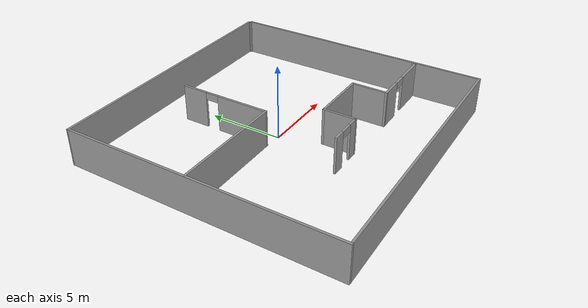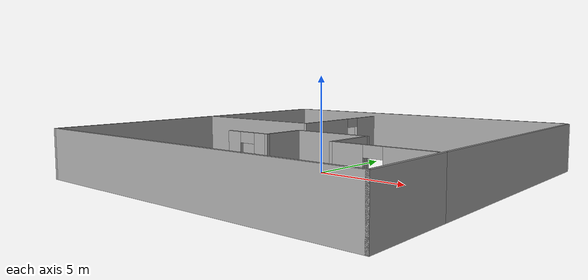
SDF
<?xml version='1.0'?>
<sdf version='1.7'>
  <model name='Untitled'>
    <pose>0.430457 -0.379185 0 0 -0 0</pose>
    <link name='Wall_10'>
      <pose>6.60954 -4.68081 0 0 -0 3.14159</pose>
      <visual name='Wall_10_Visual_0'>
        <pose>-1.2525 0 1.25 0 -0 0</pose>
        <geometry>
          <box>
            <size>2.245 0.15 2.5</size>
          </box>
        </geometry>
        <material>
          <script>
            <uri>file://media/materials/scripts/gazebo.material</uri>
            <name>Gazebo/Grey</name>
          </script>
          <ambient>1 1 1 1</ambient>
        </material>
        <meta>
          <layer>0</layer>
        </meta>
      </visual>
      <collision name='Wall_10_Collision_0'>
        <geometry>
          <box>
            <size>2.245 0.15 2.5</size>
          </box>
        </geometry>
        <pose>-1.2525 0 1.25 0 -0 0</pose>
      </collision>
      <visual name='Wall_10_Visual_1'>
        <pose>1.5725 0 1.25 0 -0 0</pose>
        <geometry>
          <box>
            <size>1.605 0.15 2.5</size>
          </box>
        </geometry>
        <material>
          <script>
            <uri>file://media/materials/scripts/gazebo.material</uri>
            <name>Gazebo/Grey</name>
          </script>
          <ambient>1 1 1 1</ambient>
        </material>
        <meta>
          <layer>0</layer>
        </meta>
      </visual>
      <collision name='Wall_10_Collision_1'>
        <geometry>
          <box>
            <size>1.605 0.15 2.5</size>
          </box>
        </geometry>
        <pose>1.5725 0 1.25 0 -0 0</pose>
      </collision>
      <visual name='Wall_10_Visual_2'>
        <pose>0.32 0 2.25 0 -0 0</pose>
        <geometry>
          <box>
            <size>0.9 0.15 0.5</size>
          </box>
        </geometry>
        <material>
          <script>
            <uri>file://media/materials/scripts/gazebo.material</uri>
            <name>Gazebo/Grey</name>
          </script>
          <ambient>1 1 1 1</ambient>
        </material>
        <meta>
          <layer>0</layer>
        </meta>
      </visual>
      <collision name='Wall_10_Collision_2'>
        <geometry>
          <box>
            <size>0.9 0.15 0.5</size>
          </box>
        </geometry>
        <pose>0.32 0 2.25 0 -0 0</pose>
      </collision>
    </link>
    <link name='Wall_11'>
      <collision name='Wall_11_Collision'>
        <geometry>
          <box>
            <size>2.5 0.15 2.5</size>
          </box>
        </geometry>
        <pose>0 0 1.25 0 -0 0</pose>
      </collision>
      <visual name='Wall_11_Visual'>
        <pose>0 0 1.25 0 -0 0</pose>
        <geometry>
          <box>
            <size>2.5 0.15 2.5</size>
          </box>
        </geometry>
        <material>
          <script>
            <uri>file://media/materials/scripts/gazebo.material</uri>
            <name>Gazebo/Grey</name>
          </script>
          <ambient>1 1 1 1</ambient>
        </material>
        <meta>
          <layer>0</layer>
        </meta>
      </visual>
      <pose>4.30954 -3.50582 0 0 -0 1.5708</pose>
    </link>
    <link name='Wall_12'>
      <collision name='Wall_12_Collision'>
        <geometry>
          <box>
            <size>4 0.15 2.5</size>
          </box>
        </geometry>
        <pose>0 0 1.25 0 -0 0</pose>
      </collision>
      <visual name='Wall_12_Visual'>
        <pose>0 0 1.25 0 -0 0</pose>
        <geometry>
          <box>
            <size>4 0.15 2.5</size>
          </box>
        </geometry>
        <material>
          <script>
            <uri>file://media/materials/scripts/gazebo.material</uri>
            <name>Gazebo/Grey</name>
          </script>
          <ambient>1 1 1 1</ambient>
        </material>
        <meta>
          <layer>0</layer>
        </meta>
      </visual>
      <pose>2.38454 -2.33081 0 0 -0 3.14159</pose>
    </link>
    <link name='Wall_13'>
      <collision name='Wall_13_Collision'>
        <geometry>
          <box>
            <size>2.25 0.15 2.5</size>
          </box>
        </geometry>
        <pose>0 0 1.25 0 -0 0</pose>
      </collision>
      <visual name='Wall_13_Visual'>
        <pose>0 0 1.25 0 -0 0</pose>
        <geometry>
          <box>
            <size>2.25 0.15 2.5</size>
          </box>
        </geometry>
        <material>
          <script>
            <uri>file://media/materials/scripts/gazebo.material</uri>
            <name>Gazebo/Grey</name>
          </script>
          <ambient>1 1 1 1</ambient>
        </material>
        <meta>
          <layer>0</layer>
        </meta>
      </visual>
      <pose>0.459543 -3.38082 0 0 -0 -1.5708</pose>
    </link>
    <link name='Wall_14'>
      <pose>-0.715457 -4.43081 0 0 -0 3.14159</pose>
      <visual name='Wall_14_Visual_0'>
        <pose>-0.8475 0 1.25 0 -0 0</pose>
        <geometry>
          <box>
            <size>0.805 0.15 2.5</size>
          </box>
        </geometry>
        <material>
          <script>
            <uri>file://media/materials/scripts/gazebo.material</uri>
            <name>Gazebo/Grey</name>
          </script>
          <ambient>1 1 1 1</ambient>
        </material>
        <meta>
          <layer>0</layer>
        </meta>
      </visual>
      <collision name='Wall_14_Collision_0'>
        <geometry>
          <box>
            <size>0.805 0.15 2.5</size>
          </box>
        </geometry>
        <pose>-0.8475 0 1.25 0 -0 0</pose>
      </collision>
      <visual name='Wall_14_Visual_1'>
        <pose>0.8525 0 1.25 0 -0 0</pose>
        <geometry>
          <box>
            <size>0.795 0.15 2.5</size>
          </box>
        </geometry>
        <material>
          <script>
            <uri>file://media/materials/scripts/gazebo.material</uri>
            <name>Gazebo/Grey</name>
          </script>
          <ambient>1 1 1 1</ambient>
        </material>
        <meta>
          <layer>0</layer>
        </meta>
      </visual>
      <collision name='Wall_14_Collision_1'>
        <geometry>
          <box>
            <size>0.795 0.15 2.5</size>
          </box>
        </geometry>
        <pose>0.8525 0 1.25 0 -0 0</pose>
      </collision>
      <visual name='Wall_14_Visual_2'>
        <pose>0.005 0 2.25 0 -0 0</pose>
        <geometry>
          <box>
            <size>0.9 0.15 0.5</size>
          </box>
        </geometry>
        <material>
          <script>
            <uri>file://media/materials/scripts/gazebo.material</uri>
            <name>Gazebo/Grey</name>
          </script>
          <ambient>1 1 1 1</ambient>
        </material>
        <meta>
          <layer>0</layer>
        </meta>
      </visual>
      <collision name='Wall_14_Collision_2'>
        <geometry>
          <box>
            <size>0.9 0.15 0.5</size>
          </box>
        </geometry>
        <pose>0.005 0 2.25 0 -0 0</pose>
      </collision>
    </link>
    <link name='Wall_17'>
      <collision name='Wall_17_Collision'>
        <geometry>
          <box>
            <size>18.3112 0.15 2.5</size>
          </box>
        </geometry>
        <pose>0 0 1.25 0 -0 0</pose>
      </collision>
      <visual name='Wall_17_Visual'>
        <pose>0 0 1.25 0 -0 0</pose>
        <geometry>
          <box>
            <size>18.3112 0.15 2.5</size>
          </box>
        </geometry>
        <material>
          <script>
            <uri>file://media/materials/scripts/gazebo.material</uri>
            <name>Gazebo/Grey</name>
          </script>
          <ambient>1 1 1 1</ambient>
        </material>
        <meta>
          <layer>0</layer>
        </meta>
      </visual>
      <pose>-0.109867 9.03448 0 0 -0 -3.13991</pose>
    </link>
    <link name='Wall_18'>
      <collision name='Wall_18_Collision'>
        <geometry>
          <box>
            <size>18.25 0.15 2.5</size>
          </box>
        </geometry>
        <pose>0 0 1.25 0 -0 0</pose>
      </collision>
      <visual name='Wall_18_Visual'>
        <pose>0 0 1.25 0 -0 0</pose>
        <geometry>
          <box>
            <size>18.25 0.15 2.5</size>
          </box>
        </geometry>
        <material>
          <script>
            <uri>file://media/materials/scripts/gazebo.material</uri>
            <name>Gazebo/Grey</name>
          </script>
          <ambient>1 1 1 1</ambient>
        </material>
        <meta>
          <layer>0</layer>
        </meta>
      </visual>
      <pose>-9.19046 -0.030815 0 0 -0 -1.5708</pose>
    </link>
    <link name='Wall_19'>
      <collision name='Wall_19_Collision'>
        <geometry>
          <box>
            <size>18.5 0.15 2.5</size>
          </box>
        </geometry>
        <pose>0 0 1.25 0 -0 0</pose>
      </collision>
      <visual name='Wall_19_Visual'>
        <pose>0 0 1.25 0 -0 0</pose>
        <geometry>
          <box>
            <size>18.5 0.15 2.5</size>
          </box>
        </geometry>
        <material>
          <script>
            <uri>file://media/materials/scripts/gazebo.material</uri>
            <name>Gazebo/Grey</name>
          </script>
          <ambient>1 1 1 1</ambient>
        </material>
        <meta>
          <layer>0</layer>
        </meta>
      </visual>
      <pose>-0.015457 -9.08081 0 0 -0 0</pose>
    </link>
    <link name='Wall_20'>
      <collision name='Wall_20_Collision'>
        <geometry>
          <box>
            <size>4.75 0.15 2.5</size>
          </box>
        </geometry>
        <pose>0 0 1.25 0 -0 0</pose>
      </collision>
      <visual name='Wall_20_Visual'>
        <pose>0 0 1.25 0 -0 0</pose>
        <geometry>
          <box>
            <size>4.75 0.15 2.5</size>
          </box>
        </geometry>
        <material>
          <script>
            <uri>file://media/materials/scripts/gazebo.material</uri>
            <name>Gazebo/Grey</name>
          </script>
          <ambient>1 1 1 1</ambient>
        </material>
        <meta>
          <layer>0</layer>
        </meta>
      </visual>
      <pose>9.15954 -6.78081 0 0 -0 1.5708</pose>
    </link>
    <link name='Wall_21'>
      <collision name='Wall_21_Collision'>
        <geometry>
          <box>
            <size>13.5 0.15 2.5</size>
          </box>
        </geometry>
        <pose>0 0 1.25 0 -0 0</pose>
      </collision>
      <visual name='Wall_21_Visual'>
        <pose>0 0 1.25 0 -0 0</pose>
        <geometry>
          <box>
            <size>13.5 0.15 2.5</size>
          </box>
        </geometry>
        <material>
          <script>
            <uri>file://media/materials/scripts/gazebo.material</uri>
            <name>Gazebo/Grey</name>
          </script>
          <ambient>1 1 1 1</ambient>
        </material>
        <meta>
          <layer>0</layer>
        </meta>
      </visual>
      <pose>9.15954 2.19419 0 0 -0 1.5708</pose>
    </link>
    <link name='Wall_22'>
      <collision name='Wall_22_Collision'>
        <geometry>
          <box>
            <size>0.411277 0.15 2.5</size>
          </box>
        </geometry>
        <pose>0 0 1.25 0 -0 0</pose>
      </collision>
      <visual name='Wall_22_Visual'>
        <pose>0 0 1.25 0 -0 0</pose>
        <geometry>
          <box>
            <size>0.411277 0.15 2.5</size>
          </box>
        </geometry>
        <material>
          <script>
            <uri>file://media/materials/scripts/gazebo.material</uri>
            <name>Gazebo/Grey</name>
          </script>
          <ambient>1 1 1 1</ambient>
        </material>
        <meta>
          <layer>0</layer>
        </meta>
      </visual>
      <pose>9.06513 8.95948 0 0 -0 2.37847</pose>
    </link>
    <link name='Wall_25'>
      <collision name='Wall_25_Collision'>
        <geometry>
          <box>
            <size>7.75 0.15 2.5</size>
          </box>
        </geometry>
        <pose>0 0 1.25 0 -0 0</pose>
      </collision>
      <visual name='Wall_25_Visual'>
        <pose>0 0 1.25 0 -0 0</pose>
        <geometry>
          <box>
            <size>7.75 0.15 2.5</size>
          </box>
        </geometry>
        <material>
          <script>
            <uri>file://media/materials/scripts/gazebo.material</uri>
            <name>Gazebo/Grey</name>
          </script>
          <ambient>1 1 1 1</ambient>
        </material>
        <meta>
          <layer>0</layer>
        </meta>
      </visual>
      <pose>-5.38987 0.520967 0 0 -0 0</pose>
    </link>
    <link name='Wall_26'>
      <pose>-1.58987 3.57097 0 0 -0 1.5708</pose>
      <visual name='Wall_26_Visual_0'>
        <pose>-1.32414 0 1.25 0 -0 0</pose>
        <geometry>
          <box>
            <size>3.60173 0.15 2.5</size>
          </box>
        </geometry>
        <material>
          <script>
            <uri>file://media/materials/scripts/gazebo.material</uri>
            <name>Gazebo/Grey</name>
          </script>
          <ambient>1 1 1 1</ambient>
        </material>
        <meta>
          <layer>0</layer>
        </meta>
      </visual>
      <collision name='Wall_26_Collision_0'>
        <geometry>
          <box>
            <size>3.60173 0.15 2.5</size>
          </box>
        </geometry>
        <pose>-1.32414 0 1.25 0 -0 0</pose>
      </collision>
      <visual name='Wall_26_Visual_1'>
        <pose>2.25087 0 1.25 0 -0 0</pose>
        <geometry>
          <box>
            <size>1.74827 0.15 2.5</size>
          </box>
        </geometry>
        <material>
          <script>
            <uri>file://media/materials/scripts/gazebo.material</uri>
            <name>Gazebo/Grey</name>
          </script>
          <ambient>1 1 1 1</ambient>
        </material>
        <meta>
          <layer>0</layer>
        </meta>
      </visual>
      <collision name='Wall_26_Collision_1'>
        <geometry>
          <box>
            <size>1.74827 0.15 2.5</size>
          </box>
        </geometry>
        <pose>2.25087 0 1.25 0 -0 0</pose>
      </collision>
      <visual name='Wall_26_Visual_2'>
        <pose>0.926729 0 2.25 0 -0 0</pose>
        <geometry>
          <box>
            <size>0.9 0.15 0.5</size>
          </box>
        </geometry>
        <material>
          <script>
            <uri>file://media/materials/scripts/gazebo.material</uri>
            <name>Gazebo/Grey</name>
          </script>
          <ambient>1 1 1 1</ambient>
        </material>
        <meta>
          <layer>0</layer>
        </meta>
      </visual>
      <collision name='Wall_26_Collision_2'>
        <geometry>
          <box>
            <size>0.9 0.15 0.5</size>
          </box>
        </geometry>
        <pose>0.926729 0 2.25 0 -0 0</pose>
      </collision>
    </link>
    <static>1</static>
  </model>
</sdf>
